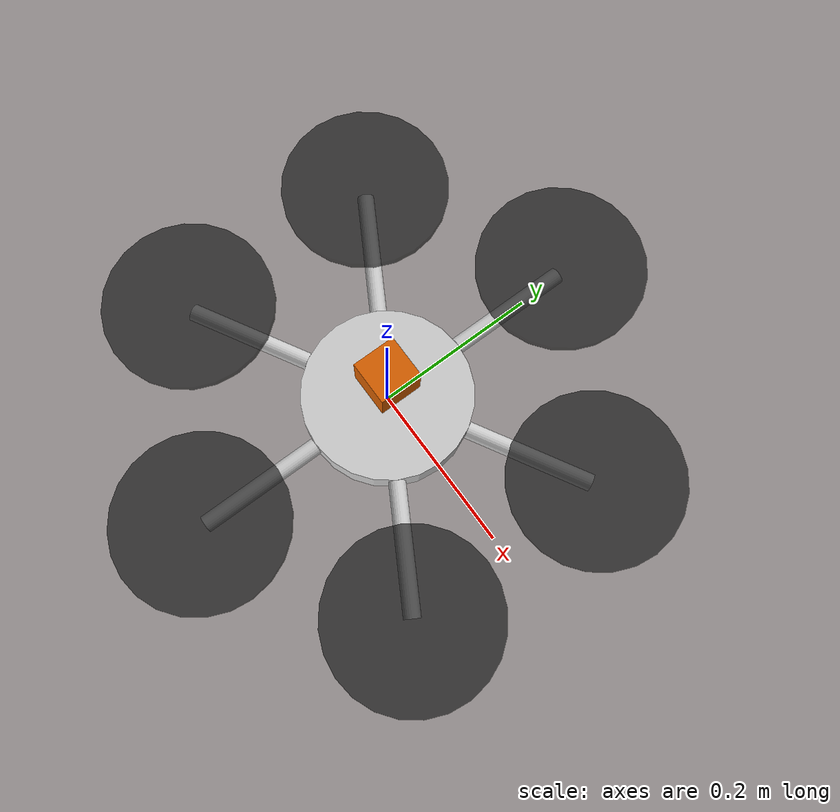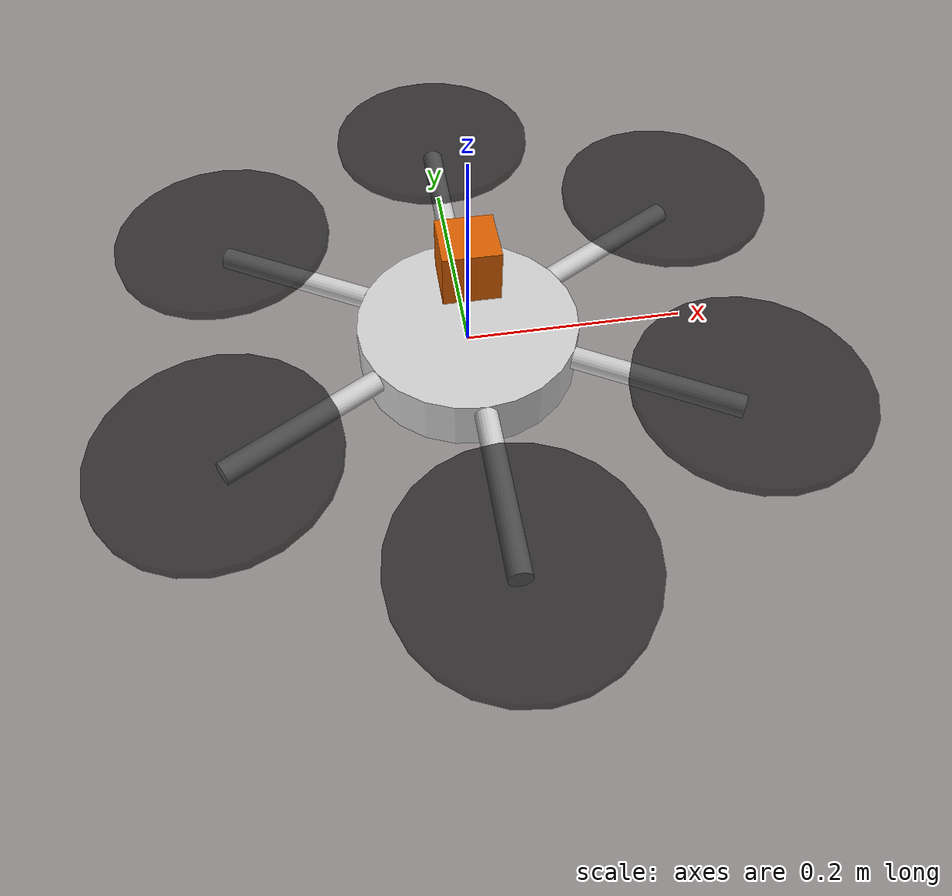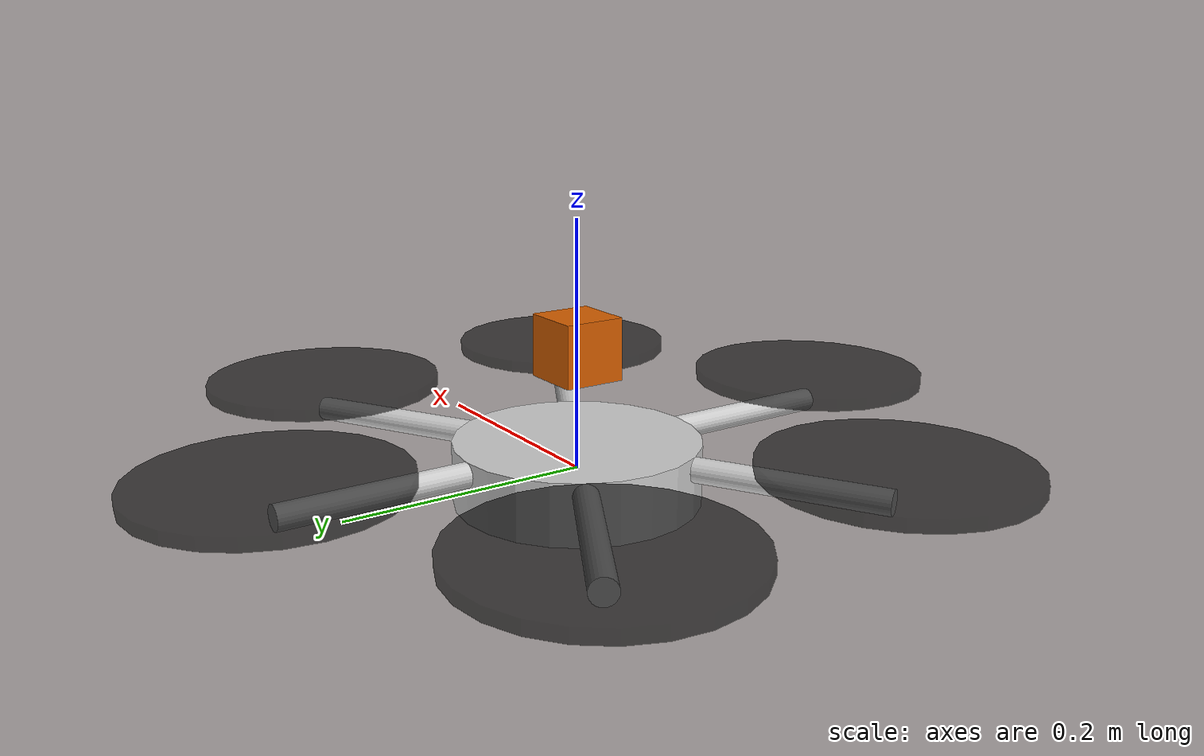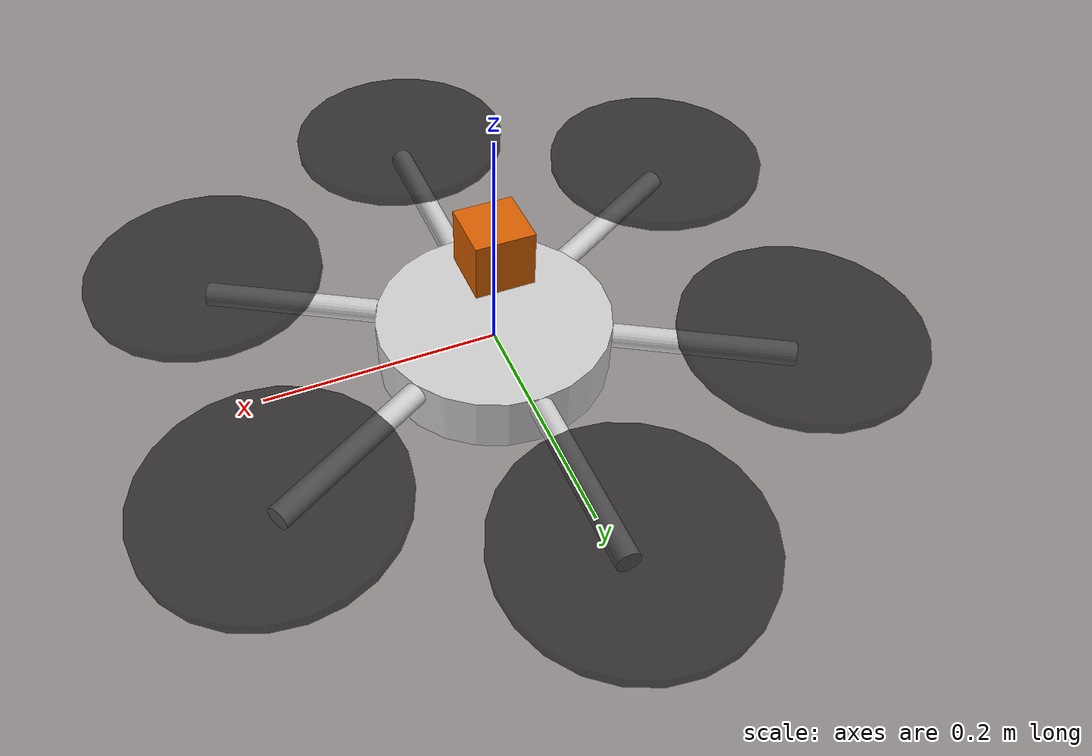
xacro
<?xml version="1.0"?>
<robot xmlns:xacro="http://wiki.ros.org/xacro" name="drone">

  <!-- properties -->
  <xacro:property name="frame_radius" value="0.1"/>
  <xacro:property name="frame_height" value="0.05"/>
  <xacro:property name="frame_mass" value="0.88"/>
  <xacro:property name="arm_radius" value="0.01"/>
  <xacro:property name="arm_length" value="0.15"/>
  <xacro:property name="arm_mass" value="0.01"/>
  <xacro:property name="propeller_radius" value="0.1"/>
  <xacro:property name="propeller_height" value="0.01"/>
  <xacro:property name="propeller_height_offset" value="0.025"/>
  <xacro:property name="propeller_mass" value="0.01"/>

  <!-- macros -->

  <xacro:macro name="cylinder_inertial" params="radius height mass *origin">
    <inertial>
      <mass value="${mass}"/>
      <xacro:insert_block name="origin"/>
      <inertia
        ixx="${0.0833333 * mass * (3 * radius * radius + height * height)}"
        ixy="0.0"
        ixz="0.0"
        iyy="${0.0833333 * mass * (3 * radius * radius + height * height)}"
        iyz="0.0"
        izz="${0.5 * mass * radius * radius}"
      />
    </inertial>
  </xacro:macro>

  <xacro:macro name="arm" params="i">
    <link name="arm${i}">
      <visual>
        <origin xyz="${cos((i-1)*pi/3+pi/6)*(frame_radius+arm_length/2)} ${sin((i-1)*pi/3+pi/6)*(frame_radius+arm_length/2)} ${frame_height/2-arm_radius}" rpy="0 ${pi/2} ${(i-1)*pi/3+pi/6}"/>
        <geometry>
          <cylinder radius="${arm_radius}" length="${arm_length}"/>
        </geometry>
        <material name="arm_material"/>
      </visual>
      <collision>
        <origin xyz="${cos((i-1)*pi/3+pi/6)*(frame_radius+arm_length/2)} ${sin((i-1)*pi/3+pi/6)*(frame_radius+arm_length/2)} ${frame_height/2-arm_radius}" rpy="0 ${pi/2} ${(i-1)*pi/3+pi/6}"/>
        <geometry>
          <cylinder radius="${arm_radius}" length="${arm_length}"/>
        </geometry>
      </collision>
      <xacro:cylinder_inertial radius="${arm_radius}" height="${arm_length}" mass="${arm_mass}">
        <origin xyz="${cos((i-1)*pi/3+pi/6)*(frame_radius+arm_length/2)} ${sin((i-1)*pi/3+pi/6)*(frame_radius+arm_length/2)} ${frame_height/2-arm_radius}" rpy="0 ${pi/2} ${(i-1)*pi/3+pi/6}"/>
      </xacro:cylinder_inertial>
    </link>

    <joint name="frame_arm${i}" type="fixed">
      <parent link="drone"/>
      <child link="arm${i}"/>
    </joint>

    <gazebo reference="arm${i}">
      <material>Gazebo/Grey</material>
    </gazebo>
  </xacro:macro>

  <xacro:macro name="propeller" params="i mat">
    <link name="propeller${i}">
      <visual>
        <origin xyz="0 0 0" rpy="0 0 0"/>
        <geometry>
          <cylinder radius="${propeller_radius}" length="${propeller_height}"/>
        </geometry>
        <material name="propeller_material"/>
      </visual>
      <collision>
        <origin xyz="0 0 0" rpy="0 0 0"/>
        <geometry>
          <cylinder radius="${propeller_radius}" length="${propeller_height}"/>
        </geometry>
      </collision>
      <xacro:cylinder_inertial radius="${propeller_radius}" height="${propeller_height}" mass="${propeller_mass}">
        <origin xyz="0 0 0" rpy="0 0 0"/>
      </xacro:cylinder_inertial>
    </link>

    <joint name="arm${i}_propeller${i}" type="revolute">
      <parent link="arm${i}"/>
      <child link="propeller${i}"/>
      <origin xyz="${cos((i-1)*pi/3+pi/6)*(frame_radius+arm_length)} ${sin((i-1)*pi/3+pi/6)*(frame_radius+arm_length)} ${frame_height/2-arm_radius+propeller_height_offset}" rpy="0 0 0"/>
      <axis xyz="0 0 1"/>
      <limit lower="0" upper="0" effort="0" velocity="0"/>
    </joint>

    <gazebo reference="propeller${i}">
      <material>${mat}</material>
    </gazebo>
  </xacro:macro>

  <!-- materials-->
  <material name="frame_material">
    <color rgba="1 0.2 0.2 1"/>
  </material>

  <material name="arm_material">
    <color rgba="0.8 0.8 0.8 1"/>
  </material>

  <material name="propeller_material">
    <color rgba="0 0 0 0.6"/>
  </material>

  <!-- links -->
  <link name="drone">
    <visual>
      <origin xyz="0 0 0" rpy="0 0 0"/>
      <geometry>
        <cylinder radius="${frame_radius}" length="${frame_height}"/>
      </geometry>
      <material name="frame_material">
        <color rgba="0.8 0.8 0.8 1.0"/>
      </material>
    </visual>
    <collision>
      <origin xyz="0 0 1" rpy="0 0 0"/>
      <geometry>
        <cylinder radius="${frame_radius}" length="${frame_height}"/>
      </geometry>
    </collision>
    <xacro:cylinder_inertial radius="${frame_radius}" height="${frame_height}" mass="${frame_mass}">
      <origin xyz="0 0 0" rpy="0 0 0" />
    </xacro:cylinder_inertial>
  </link>

  <xacro:arm i="1"/>
  <xacro:arm i="2"/>
  <xacro:arm i="3"/>
  <xacro:arm i="4"/>
  <xacro:arm i="5"/>
  <xacro:arm i="6"/>

  <xacro:propeller i="1" mat="Gazebo/RedTransparent"/>
  <xacro:propeller i="2" mat="Gazebo/BlackTransparent"/>
  <xacro:propeller i="3" mat="Gazebo/BlueTransparent"/>
  <xacro:propeller i="4" mat="Gazebo/BlueTransparent"/>
  <xacro:propeller i="5" mat="Gazebo/BlackTransparent"/>
  <xacro:propeller i="6" mat="Gazebo/RedTransparent"/>

  <!-- gazebo -->
  <gazebo reference="drone">
    <material>Gazebo/Orange</material>
  </gazebo>

  <gazebo>
    <plugin name="drone_plugin" filename="libdrone_plugin.so">
      <updateRate>100</updateRate>
      <publishTf>true</publishTf>
      <rotorThrustCoeff>0.00025</rotorThrustCoeff>
      <rotorTorqueCoeff>0.0000074</rotorTorqueCoeff>
    </plugin>
  </gazebo>

<!--XXXXXXXXXXXXXXXXXXXXXXXXXXXXXXXXXXXXXXXXXXXXXXXXXXXXXX-->
<!-- Create Depth Camera Link -->
  <link name="depth_camera">
    <visual>
    <origin xyz="0 0 0.05" rpy="0 0 1.5708"/>
      <geometry>
        <box size="0.05 0.05 0.05"/>
      </geometry>
    </visual>
    <collision>
      <geometry>
        <box size="0.05 0.05 0.05"/>
      </geometry>
    </collision>
    <inertial>
      <mass value="0.0000000001"/>
      <origin rpy="0 0 0" xyz="0 0 1"/>
      <inertia ixx="0.001" ixy="0.001" ixz="0.001" iyy="0.001" iyz="0.001" izz="0.001"/>
    </inertial>
    <material name="camera_color">
      <color rgba="0 0 0 1"/>
    </material>
  </link>

  <!-- Create Depth Camera Joint -->
  <joint name="camera_joint" type="fixed">
    <parent link="drone"/>
    <child link="depth_camera"/>
    <!--origin xyz="0 0 1.05" rpy="0 0 0"/-->
    <origin xyz="0 0 0.05" rpy="0 0 1.5708"/>

    <axis xyz="1 0 0"/>
    <limit lower="-3.14159" upper="3.14159" effort="10" velocity="3.14159"/>
  </joint>

<gazebo reference="drone">
  <sensor name="frame_camera" type="depth">
    <update_rate>20</update_rate>
    <camera>
      <horizontal_fov>2.5</horizontal_fov>
      <image>
        <width>80</width>
        <height>60</height>
        <format>R8G8B8</format>
      </image>
      <clip>
        <near>0.05</near>
        <far>3</far>
      </clip>
    </camera>
    <plugin name="frame_controller" filename="libgazebo_ros_openni_kinect.so">
      <baseline>0.2</baseline>
      <alwaysOn>true</alwaysOn>
      <updateRate>1.0</updateRate>
      <cameraName>depth_camera_ir</cameraName>
      <imageTopicName>/depth_camera/color/image_raw</imageTopicName>
      <cameraInfoTopicName>/depth_camera/color/camera_info</cameraInfoTopicName>
      <depthImageTopicName>/depth_camera/depth/image_raw</depthImageTopicName>
      <depthImageInfoTopicName>/depth_camera/depth/camera_info</depthImageInfoTopicName>
      <pointCloudTopicName>/depth_camera/depth/points</pointCloudTopicName>
      <frameName>drone</frameName>
      <pointCloudCutoff>0.5</pointCloudCutoff>
      <pointCloudCutoffMax>3.0</pointCloudCutoffMax>
      <distortionK1>0.00000001</distortionK1>
      <distortionK2>0.00000001</distortionK2>
      <distortionK3>0.00000001</distortionK3>
      <distortionT1>0.00000001</distortionT1>
      <distortionT2>0.00000001</distortionT2>
      <CxPrime>0</CxPrime>
      <Cx>0</Cx>
      <Cy>0</Cy>
      <focalLength>0</focalLength>
      <hackBaseline>0</hackBaseline>
    </plugin>
  </sensor>
</gazebo>

</robot>
